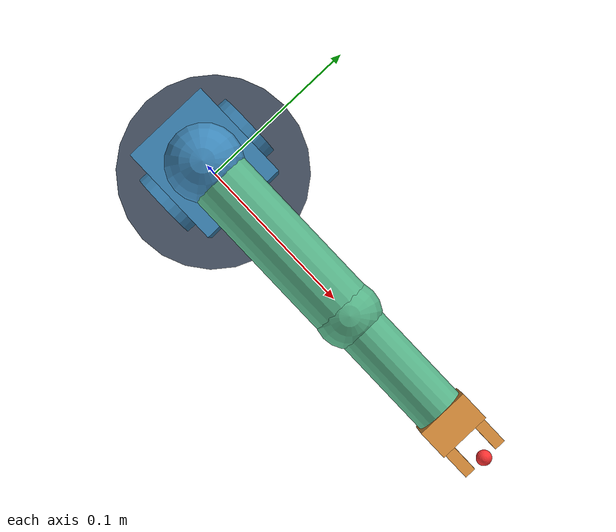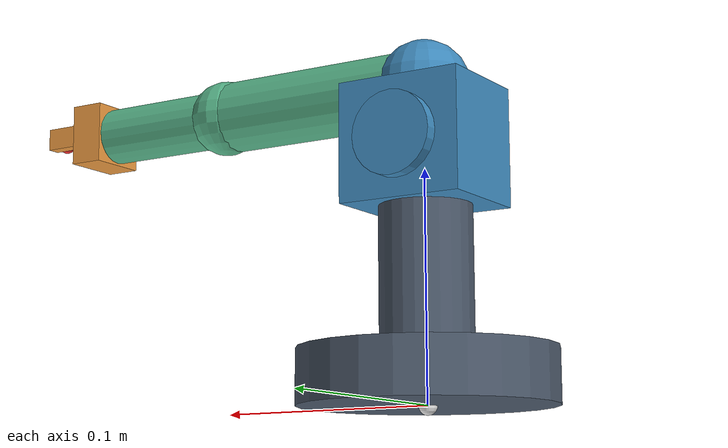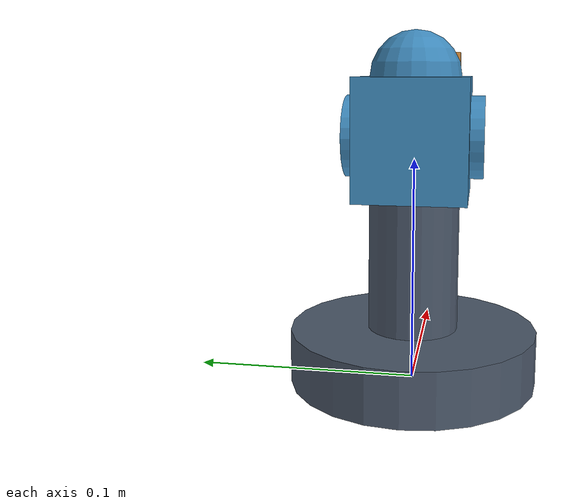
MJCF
<mujoco model="mini_arm">

  <compiler angle="radian" autolimits="true" inertiafromgeom="true"/>

  <!-- ===============================================================
       contact · 关闭**同一棵运动链内部**的碰撞
       =============================================================== -->
  <contact>
    <!-- 立柱与肩部回转体（同轴，几何上必然互相穿模） -->
    <exclude body1="base" body2="shoulder_link"/>
    <!-- 立柱与上臂：就是上面实测到的那一对 -->
    <exclude body1="base" body2="upper_arm"/>
    <!-- 底座与远端连杆：折叠到底时才会碰上，同样属于"造型干涉" -->
    <exclude body1="base" body2="forearm_link"/>
    <exclude body1="base" body2="ee_link"/>
    <!-- 肩部与上臂是父-子关系（MuJoCo 默认已过滤），显式写出让意图可读 -->
    <exclude body1="shoulder_link" body2="upper_arm"/>
    <!-- 上臂与其内部的前臂/末端：肘部折到底时的造型干涉 -->
    <exclude body1="upper_arm" body2="forearm_link"/>
    <exclude body1="upper_arm" body2="ee_link"/>
    <!-- 前臂与末端是父-子关系；末端指爪与前臂折叠时的干涉 -->
    <exclude body1="forearm_link" body2="ee_link"/>
  </contact>

  <!-- 无重力版本差异：保持默认重力（0 0 -9.81），使 Sim2Sim 有意义 -->
  <option gravity="0 0 -9.81" integrator="RK4" timestep="0.002"/>

  <asset>
    <material name="mat_base"    rgba="0.30 0.35 0.42 1"/>
    <material name="mat_shoulder" rgba="0.25 0.55 0.75 1"/>
    <material name="mat_forearm" rgba="0.35 0.72 0.55 1"/>
    <material name="mat_ee"      rgba="0.92 0.60 0.25 1"/>
  </asset>

  <worldbody>
    <body name="base" pos="0 0 0">
      <inertial pos="0 0 0.012" mass="0.60"/>
      <geom name="base_geom" type="cylinder" size="0.055 0.012"
            pos="0 0 0.012" material="mat_base"/>

      <!-- base 的参考坐标系（base_frame = "base"），供 Three.js 与 UI 显示坐标轴 -->
      <site name="base_origin" pos="0 0 0" size="0.004" rgba="0.9 0.9 0.9 1"/>

      <!-- base_link 末端处的顶面 site，用于视觉上标记立柱顶端 -->
      <geom name="base_column" type="cylinder" size="0.020 0.030"
            pos="0 0 0.054" material="mat_base"/>

      <body name="shoulder_link" pos="0 0 0.084">
        <joint name="base_yaw" type="hinge" axis="0 0 1"
               pos="0 0 0" range="-3.14159265358979 3.14159265358979"
               damping="0.10" frictionloss="0.01" armature="0.01"/>
        <inertial pos="0 0 0.030" mass="0.35"/>
        <!-- 肩部总成：一个立起来的方形块 -->
        <geom name="shoulder_block" type="box" size="0.028 0.024 0.026"
              pos="0 0 0.026" material="mat_shoulder"/>
        <geom name="shoulder_hub" type="cylinder" size="0.018 0.030"
              pos="0 0 0.026" quat="0.70710678 0.70710678 0 0"
              material="mat_shoulder"/>

        <body name="upper_arm" pos="0 0 0.052">
          <joint name="shoulder" type="hinge" axis="0 1 0"
                 pos="0 0 0" range="-1.57079632679490 1.57079632679490"
                 damping="0.08" frictionloss="0.01" armature="0.01"/>
          <inertial pos="0.055 0 0" mass="0.22"/>
          <!-- 上臂：沿 +X 伸出的长条（+X 是"前方"） -->
          <geom name="upper_arm_link" type="capsule" size="0.016 0.048"
                pos="0.055 0 0" quat="0.70710678 0 0.70710678 0"
                material="mat_forearm"/>
          <geom name="shoulder_joint_cap" type="sphere" size="0.020"
                pos="0 0 0" material="mat_shoulder"/>

          <body name="forearm_link" pos="0.103 0 0">
            <joint name="elbow" type="hinge" axis="0 1 0"
                   pos="0 0 0" range="-2.35619449019234 2.35619449019234"
                   damping="0.06" frictionloss="0.01" armature="0.01"/>
            <inertial pos="0.035 0 0" mass="0.14"/>
            <geom name="forearm_link_geom" type="capsule" size="0.013 0.030"
                  pos="0.035 0 0" quat="0.70710678 0 0.70710678 0"
                  material="mat_forearm"/>
            <geom name="elbow_joint_cap" type="sphere" size="0.017"
                  pos="0 0 0" material="mat_forearm"/>

            <body name="ee_link" pos="0.065 0 0">
              <inertial pos="0.008 0 0" mass="0.05"/>
              <geom name="ee_palm" type="box" size="0.008 0.014 0.014"
                    pos="0.008 0 0" material="mat_ee"/>
              <!-- 两个"手指"（纯视觉，v0.1 不实现夹爪自由度） -->
              <geom name="ee_finger_a" type="box" size="0.012 0.003 0.005"
                    pos="0.020 0.010 0" material="mat_ee"/>
              <geom name="ee_finger_b" type="box" size="0.012 0.003 0.005"
                    pos="0.020 -0.010 0" material="mat_ee"/>

              <!-- EndEffector 的 frame 参考点（ee_link 原点） -->
              <site name="ee_frame_site" pos="0 0 0" size="0.003"
                    rgba="1 0.8 0.2 1"/>
              <!-- Tool Center Point：两指之间的中心，位于指端稍前 -->
              <site name="tcp" pos="0.032 0 0" size="0.004"
                    rgba="1 0.2 0.2 1"/>
            </body>
          </body>
        </body>
      </body>
    </body>
  </worldbody>

  <actuator>
    <position name="base_yaw_motor" joint="base_yaw"
              kp="60" kv="4"
              ctrlrange="-3.14159265358979 3.14159265358979"/>
    <position name="shoulder_motor" joint="shoulder"
              kp="60" kv="4"
              ctrlrange="-1.57079632679490 1.57079632679490"/>
    <position name="elbow_motor" joint="elbow"
              kp="60" kv="4"
              ctrlrange="-2.35619449019234 2.35619449019234"/>
  </actuator>

  <sensor>
    <jointpos name="base_yaw_pos" joint="base_yaw"/>
    <jointpos name="shoulder_pos" joint="shoulder"/>
    <jointpos name="elbow_pos" joint="elbow"/>
    <jointvel name="base_yaw_vel" joint="base_yaw"/>
    <jointvel name="shoulder_vel" joint="shoulder"/>
    <jointvel name="elbow_vel" joint="elbow"/>
  </sensor>

</mujoco>
